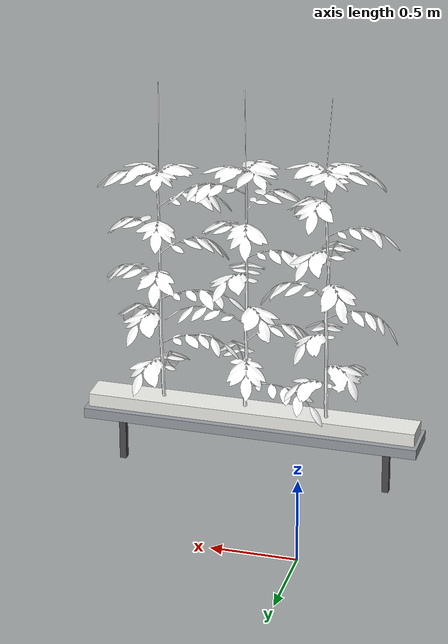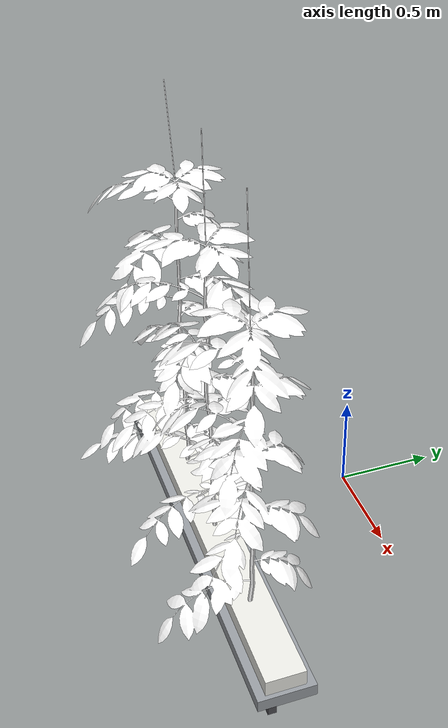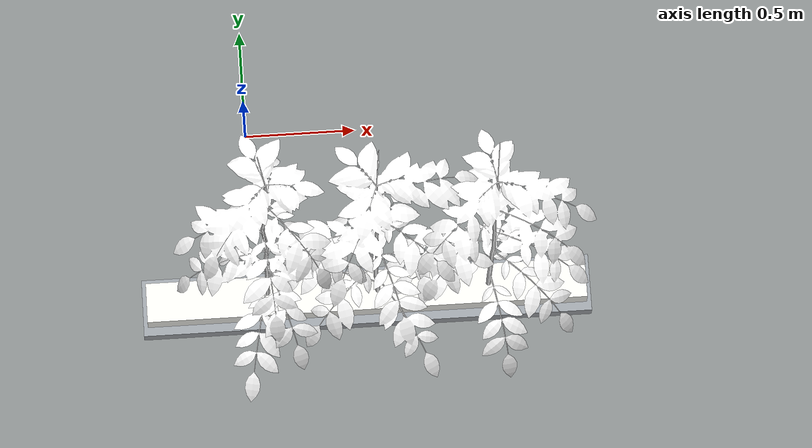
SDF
<sdf version="1.9">
 <world name="default">
  <physics name="2ms" type="ignored">
   <max_step_size>0.002</max_step_size>
   <real_time_factor>1.0</real_time_factor>
  </physics>
  <plugin filename="gz-sim-physics-system" name="gz::sim::systems::Physics"/>
  <plugin filename="gz-sim-user-commands-system" name="gz::sim::systems::UserCommands"/>
  <plugin filename="gz-sim-scene-broadcaster-system" name="gz::sim::systems::SceneBroadcaster"/>
  <plugin filename="gz-sim-sensors-system" name="gz::sim::systems::Sensors">
   <render_engine>ogre2</render_engine>
  </plugin>
  <plugin filename="gz-sim-imu-system" name="gz::sim::systems::Imu"/>
  <plugin filename="gz-sim-particle-emitter-system" name="gz::sim::systems::ParticleEmitter"/>
  <scene>
   <grid>false</grid>
   <shadows>false</shadows>
   <ambient>0.45 0.45 0.45 1</ambient>
   <background>0.70 0.82 0.95 1</background>
  </scene>
  <light type="directional" name="sun">
   <cast_shadows>false</cast_shadows>
   <pose>0 0 20 0 0 0</pose>
   <diffuse>0.85 0.83 0.78 1</diffuse>
   <specular>0.2 0.2 0.2 1</specular>
   <direction>0.35 0.25 -0.9</direction>
  </light>
  <model name="bench_line">
   <static>true</static>
   <link name="line_0">
    <pose>0.5 -0.9 0 0 0 0</pose>
    <collision name="gutter">
     <pose>0 0 0.22 0 0 0</pose>
     <geometry><box><size>2.0 0.26 0.44</size></box></geometry>
    </collision>
    <visual name="gutter">
     <pose>0 0 0.33 0 0 0</pose>
     <geometry><box><size>2.0 0.26 0.06</size></box></geometry>
     <material><ambient>0.60 0.62 0.64 1</ambient><diffuse>0.60 0.62 0.64 1</diffuse></material>
    </visual>
    <visual name="slab">
     <pose>0 0 0.40 0 0 0</pose>
     <geometry><box><size>1.96 0.18 0.08</size></box></geometry>
     <material><ambient>0.93 0.93 0.91 1</ambient><diffuse>0.93 0.93 0.91 1</diffuse></material>
    </visual>
    <visual name="stand_west">
     <pose>-0.8 0 0.15 0 0 0</pose>
     <geometry><box><size>0.04 0.04 0.30</size></box></geometry>
     <material><ambient>0.30 0.30 0.32 1</ambient><diffuse>0.30 0.30 0.32 1</diffuse></material>
    </visual>
    <visual name="stand_east">
     <pose>0.8 0 0.15 0 0 0</pose>
     <geometry><box><size>0.04 0.04 0.30</size></box></geometry>
     <material><ambient>0.30 0.30 0.32 1</ambient><diffuse>0.30 0.30 0.32 1</diffuse></material>
    </visual>
    <visual name="plant_0">
     <pose>-0.45 0 0.44 0 0 1.5708</pose>
     <geometry><mesh><uri>model://greenhouse_tomato_rows/meshes/tomato_plant_0.obj</uri></mesh></geometry>
     <material>
      <diffuse>1 1 1 1</diffuse>
      <pbr>
       <metal>
        <albedo_map>model://greenhouse_tomato_rows/materials/textures/palette.png</albedo_map>
        <metalness>0</metalness>
        <roughness>0.9</roughness>
       </metal>
      </pbr>
     </material>
    </visual>
    <visual name="plant_1">
     <pose>0.05 0 0.44 0 0 1.5708</pose>
     <geometry><mesh><uri>model://greenhouse_tomato_rows/meshes/tomato_plant_3.obj</uri></mesh></geometry>
     <material>
      <diffuse>1 1 1 1</diffuse>
      <pbr>
       <metal>
        <albedo_map>model://greenhouse_tomato_rows/materials/textures/palette.png</albedo_map>
        <metalness>0</metalness>
        <roughness>0.9</roughness>
       </metal>
      </pbr>
     </material>
    </visual>
    <visual name="plant_2">
     <pose>0.55 0 0.44 0 0 1.5708</pose>
     <geometry><mesh><uri>model://greenhouse_tomato_rows/meshes/tomato_plant_5.obj</uri></mesh></geometry>
     <material>
      <diffuse>1 1 1 1</diffuse>
      <pbr>
       <metal>
        <albedo_map>model://greenhouse_tomato_rows/materials/textures/palette.png</albedo_map>
        <metalness>0</metalness>
        <roughness>0.9</roughness>
       </metal>
      </pbr>
     </material>
    </visual>
   </link>
  </model>
 </world>
</sdf>
